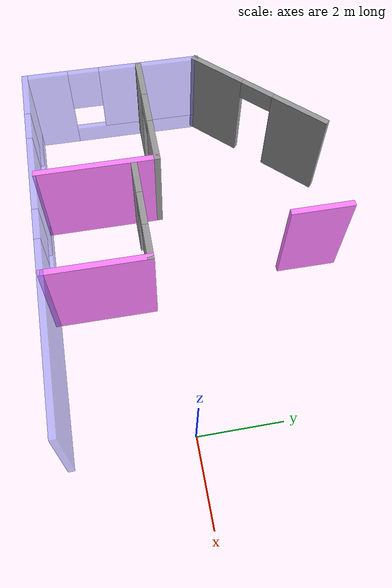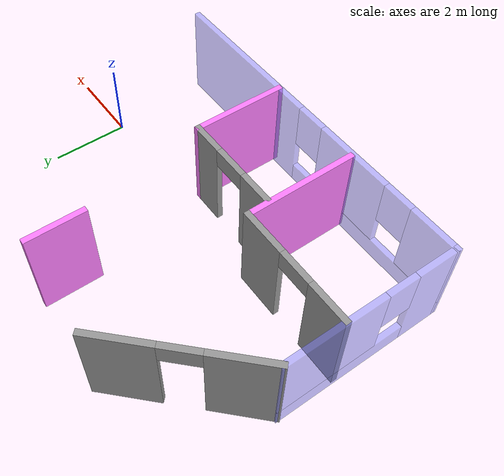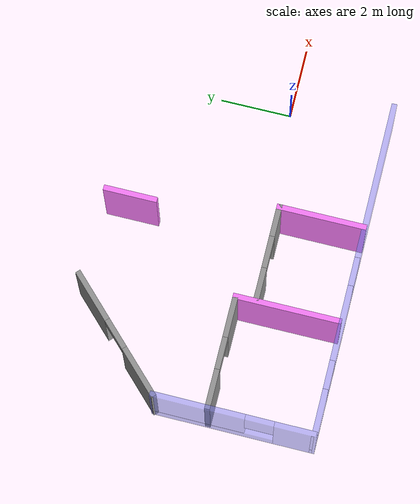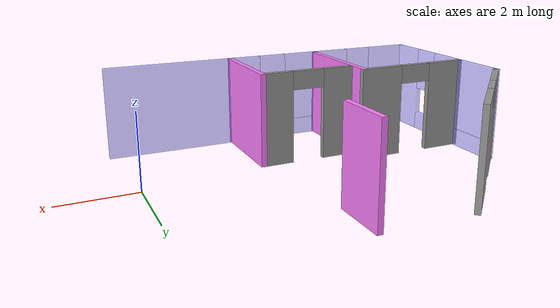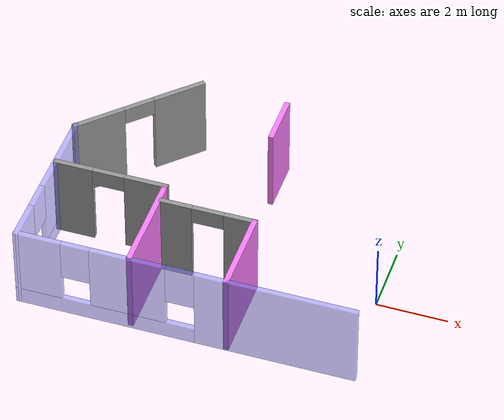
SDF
<sdf version="1.6">
 <model name="house">
  <link name="Wall_12">
   <pose>-4.46967 -2.80585 0 0 -0 3.14159</pose>
   <inertial>
    <mass>1</mass>
    <inertia><ixx>1</ixx><ixy>0</ixy><ixz>0</ixz><iyy>1</iyy><iyz>0</iyz><izz>1</izz></inertia>
   </inertial>
   <visual name="Wall_12_Visual_0">
    <pose>-2.52226 0 1.25 0 -0 0</pose>
    <geometry><box><size>4.45547 0.15 2.5</size></box></geometry>
    <material>
     <script><uri>file://media/materials/scripts/gazebo.material</uri><name>Gazebo/Grey</name></script>
     <ambient>0.5 0.5 1 0.5</ambient>
     <shader type="pixel"><normal_map>__default__</normal_map></shader>
     <diffuse>0.7 0.7 0.7 1</diffuse>
     <specular>0.01 0.01 0.01 1</specular>
     <emissive>0 0 0 1</emissive>
    </material>
    <meta><layer>0</layer></meta>
   </visual>
   <visual name="Wall_12_Visual_1">
    <pose>2.22774 0 0.25 0 -0 0</pose>
    <geometry><box><size>5.04453 0.15 0.5</size></box></geometry>
    <material>
     <script><uri>file://media/materials/scripts/gazebo.material</uri><name>Gazebo/Grey</name></script>
     <ambient>0.5 0.5 1 0.5</ambient>
     <shader type="pixel"><normal_map>__default__</normal_map></shader>
     <diffuse>0.7 0.7 0.7 1</diffuse>
     <specular>0.01 0.01 0.01 1</specular>
     <emissive>0 0 0 1</emissive>
    </material>
    <meta><layer>0</layer></meta>
   </visual>
   <visual name="Wall_12_Visual_5">
    <pose>3.01993 0 1.9 0 -0 0</pose>
    <geometry><box><size>0.8 0.15 1.2</size></box></geometry>
    <material>
     <script><uri>file://media/materials/scripts/gazebo.material</uri><name>Gazebo/Grey</name></script>
     <ambient>0.5 0.5 1 0.5</ambient>
     <shader type="pixel"><normal_map>__default__</normal_map></shader>
     <diffuse>0.7 0.7 0.7 1</diffuse>
     <specular>0.01 0.01 0.01 1</specular>
     <emissive>0 0 0 1</emissive>
    </material>
    <meta><layer>0</layer></meta>
   </visual>
   <visual name="Wall_12_Visual_2">
    <pose>1.5627 0 1.5 0 -0 0</pose>
    <geometry><box><size>2.11446 0.15 2</size></box></geometry>
    <material>
     <script><uri>file://media/materials/scripts/gazebo.material</uri><name>Gazebo/Grey</name></script>
     <ambient>0.5 0.5 1 0.5</ambient>
     <shader type="pixel"><normal_map>__default__</normal_map></shader>
     <diffuse>0.7 0.7 0.7 1</diffuse>
     <specular>0.01 0.01 0.01 1</specular>
     <emissive>0 0 0 1</emissive>
    </material>
    <meta><layer>0</layer></meta>
   </visual>
   <visual name="Wall_12_Visual_3">
    <pose>4.08496 0 1.5 0 -0 0</pose>
    <geometry><box><size>1.33007 0.15 2</size></box></geometry>
    <material>
     <script><uri>file://media/materials/scripts/gazebo.material</uri><name>Gazebo/Grey</name></script>
     <ambient>0.5 0.5 1 0.5</ambient>
     <shader type="pixel"><normal_map>__default__</normal_map></shader>
     <diffuse>0.7 0.7 0.7 1</diffuse>
     <specular>0.01 0.01 0.01 1</specular>
     <emissive>0 0 0 1</emissive>
    </material>
    <meta><layer>0</layer></meta>
   </visual>
   <visual name="Wall_12_Visual_4">
    <pose>0.10547 0 1.9 0 -0 0</pose>
    <geometry><box><size>0.8 0.15 1.2</size></box></geometry>
    <material>
     <script><uri>file://media/materials/scripts/gazebo.material</uri><name>Gazebo/Grey</name></script>
     <ambient>0.5 0.5 1 0.5</ambient>
     <shader type="pixel"><normal_map>__default__</normal_map></shader>
     <diffuse>0.7 0.7 0.7 1</diffuse>
     <specular>0.01 0.01 0.01 1</specular>
     <emissive>0 0 0 1</emissive>
    </material>
    <meta><layer>0</layer></meta>
   </visual>
   <collision name="Wall_12_Collision_0">
    <pose>-2.52226 0 1.25 0 -0 0</pose>
    <geometry><box><size>4.45547 0.15 2.5</size></box></geometry>
    <surface>
     <friction>
      <ode><mu>1</mu><mu2>1</mu2><fdir1>0 0 0</fdir1><slip1>0</slip1><slip2>0</slip2></ode>
      <torsional>
       <coefficient>1</coefficient>
       <patch_radius>0</patch_radius>
       <surface_radius>0</surface_radius>
       <use_patch_radius>1</use_patch_radius>
       <ode><slip>0</slip></ode>
      </torsional>
     </friction>
     <bounce><restitution_coefficient>0</restitution_coefficient><threshold>1e+06</threshold></bounce>
     <contact>
      <collide_without_contact>0</collide_without_contact>
      <collide_without_contact_bitmask>1</collide_without_contact_bitmask>
      <collide_bitmask>1</collide_bitmask>
      <ode>
       <soft_cfm>0</soft_cfm>
       <soft_erp>0.2</soft_erp>
       <kp>1e+13</kp>
       <kd>1</kd>
       <max_vel>0.01</max_vel>
       <min_depth>0</min_depth>
      </ode>
      <bullet>
       <split_impulse>1</split_impulse>
       <split_impulse_penetration_threshold>-0.01</split_impulse_penetration_threshold>
       <soft_cfm>0</soft_cfm>
       <soft_erp>0.2</soft_erp>
       <kp>1e+13</kp>
       <kd>1</kd>
      </bullet>
     </contact>
    </surface>
   </collision>
   <collision name="Wall_12_Collision_1">
    <pose>2.22774 0 0.25 0 -0 0</pose>
    <geometry><box><size>5.04453 0.15 0.5</size></box></geometry>
    <surface>
     <friction>
      <ode><mu>1</mu><mu2>1</mu2><fdir1>0 0 0</fdir1><slip1>0</slip1><slip2>0</slip2></ode>
      <torsional>
       <coefficient>1</coefficient>
       <patch_radius>0</patch_radius>
       <surface_radius>0</surface_radius>
       <use_patch_radius>1</use_patch_radius>
       <ode><slip>0</slip></ode>
      </torsional>
     </friction>
     <bounce><restitution_coefficient>0</restitution_coefficient><threshold>1e+06</threshold></bounce>
     <contact>
      <collide_without_contact>0</collide_without_contact>
      <collide_without_contact_bitmask>1</collide_without_contact_bitmask>
      <collide_bitmask>1</collide_bitmask>
      <ode>
       <soft_cfm>0</soft_cfm>
       <soft_erp>0.2</soft_erp>
       <kp>1e+13</kp>
       <kd>1</kd>
       <max_vel>0.01</max_vel>
       <min_depth>0</min_depth>
      </ode>
      <bullet>
       <split_impulse>1</split_impulse>
       <split_impulse_penetration_threshold>-0.01</split_impulse_penetration_threshold>
       <soft_cfm>0</soft_cfm>
       <soft_erp>0.2</soft_erp>
       <kp>1e+13</kp>
       <kd>1</kd>
      </bullet>
     </contact>
    </surface>
   </collision>
   <collision name="Wall_12_Collision_5">
    <pose>3.01993 0 1.9 0 -0 0</pose>
    <geometry><box><size>0.8 0.15 1.2</size></box></geometry>
    <surface>
     <friction>
      <ode><mu>1</mu><mu2>1</mu2><fdir1>0 0 0</fdir1><slip1>0</slip1><slip2>0</slip2></ode>
      <torsional>
       <coefficient>1</coefficient>
       <patch_radius>0</patch_radius>
       <surface_radius>0</surface_radius>
       <use_patch_radius>1</use_patch_radius>
       <ode><slip>0</slip></ode>
      </torsional>
     </friction>
     <bounce><restitution_coefficient>0</restitution_coefficient><threshold>1e+06</threshold></bounce>
     <contact>
      <collide_without_contact>0</collide_without_contact>
      <collide_without_contact_bitmask>1</collide_without_contact_bitmask>
      <collide_bitmask>1</collide_bitmask>
      <ode>
       <soft_cfm>0</soft_cfm>
       <soft_erp>0.2</soft_erp>
       <kp>1e+13</kp>
       <kd>1</kd>
       <max_vel>0.01</max_vel>
       <min_depth>0</min_depth>
      </ode>
      <bullet>
       <split_impulse>1</split_impulse>
       <split_impulse_penetration_threshold>-0.01</split_impulse_penetration_threshold>
       <soft_cfm>0</soft_cfm>
       <soft_erp>0.2</soft_erp>
       <kp>1e+13</kp>
       <kd>1</kd>
      </bullet>
     </contact>
    </surface>
   </collision>
   <collision name="Wall_12_Collision_2">
    <pose>1.5627 0 1.5 0 -0 0</pose>
    <geometry><box><size>2.11446 0.15 2</size></box></geometry>
    <surface>
     <friction>
      <ode><mu>1</mu><mu2>1</mu2><fdir1>0 0 0</fdir1><slip1>0</slip1><slip2>0</slip2></ode>
      <torsional>
       <coefficient>1</coefficient>
       <patch_radius>0</patch_radius>
       <surface_radius>0</surface_radius>
       <use_patch_radius>1</use_patch_radius>
       <ode><slip>0</slip></ode>
      </torsional>
     </friction>
     <bounce><restitution_coefficient>0</restitution_coefficient><threshold>1e+06</threshold></bounce>
     <contact>
      <collide_without_contact>0</collide_without_contact>
      <collide_without_contact_bitmask>1</collide_without_contact_bitmask>
      <collide_bitmask>1</collide_bitmask>
      <ode>
       <soft_cfm>0</soft_cfm>
       <soft_erp>0.2</soft_erp>
       <kp>1e+13</kp>
       <kd>1</kd>
       <max_vel>0.01</max_vel>
       <min_depth>0</min_depth>
      </ode>
      <bullet>
       <split_impulse>1</split_impulse>
       <split_impulse_penetration_threshold>-0.01</split_impulse_penetration_threshold>
       <soft_cfm>0</soft_cfm>
       <soft_erp>0.2</soft_erp>
       <kp>1e+13</kp>
       <kd>1</kd>
      </bullet>
     </contact>
    </surface>
   </collision>
   <collision name="Wall_12_Collision_3">
    <pose>4.08496 0 1.5 0 -0 0</pose>
    <geometry><box><size>1.33007 0.15 2</size></box></geometry>
    <surface>
     <friction>
      <ode><mu>1</mu><mu2>1</mu2><fdir1>0 0 0</fdir1><slip1>0</slip1><slip2>0</slip2></ode>
      <torsional>
       <coefficient>1</coefficient>
       <patch_radius>0</patch_radius>
       <surface_radius>0</surface_radius>
       <use_patch_radius>1</use_patch_radius>
       <ode><slip>0</slip></ode>
      </torsional>
     </friction>
     <bounce><restitution_coefficient>0</restitution_coefficient><threshold>1e+06</threshold></bounce>
     <contact>
      <collide_without_contact>0</collide_without_contact>
      <collide_without_contact_bitmask>1</collide_without_contact_bitmask>
      <collide_bitmask>1</collide_bitmask>
      <ode>
       <soft_cfm>0</soft_cfm>
       <soft_erp>0.2</soft_erp>
       <kp>1e+13</kp>
       <kd>1</kd>
       <max_vel>0.01</max_vel>
       <min_depth>0</min_depth>
      </ode>
      <bullet>
       <split_impulse>1</split_impulse>
       <split_impulse_penetration_threshold>-0.01</split_impulse_penetration_threshold>
       <soft_cfm>0</soft_cfm>
       <soft_erp>0.2</soft_erp>
       <kp>1e+13</kp>
       <kd>1</kd>
      </bullet>
     </contact>
    </surface>
   </collision>
   <collision name="Wall_12_Collision_4">
    <pose>0.10547 0 1.9 0 -0 0</pose>
    <geometry><box><size>0.8 0.15 1.2</size></box></geometry>
    <surface>
     <friction>
      <ode><mu>1</mu><mu2>1</mu2><fdir1>0 0 0</fdir1><slip1>0</slip1><slip2>0</slip2></ode>
      <torsional>
       <coefficient>1</coefficient>
       <patch_radius>0</patch_radius>
       <surface_radius>0</surface_radius>
       <use_patch_radius>1</use_patch_radius>
       <ode><slip>0</slip></ode>
      </torsional>
     </friction>
     <bounce><restitution_coefficient>0</restitution_coefficient><threshold>1e+06</threshold></bounce>
     <contact>
      <collide_without_contact>0</collide_without_contact>
      <collide_without_contact_bitmask>1</collide_without_contact_bitmask>
      <collide_bitmask>1</collide_bitmask>
      <ode>
       <soft_cfm>0</soft_cfm>
       <soft_erp>0.2</soft_erp>
       <kp>1e+13</kp>
       <kd>1</kd>
       <max_vel>0.01</max_vel>
       <min_depth>0</min_depth>
      </ode>
      <bullet>
       <split_impulse>1</split_impulse>
       <split_impulse_penetration_threshold>-0.01</split_impulse_penetration_threshold>
       <soft_cfm>0</soft_cfm>
       <soft_erp>0.2</soft_erp>
       <kp>1e+13</kp>
       <kd>1</kd>
      </bullet>
     </contact>
    </surface>
   </collision>
  </link>
  <link name="Wall_13">
   <pose>-9.13266 -0.586181 0 0 -0 1.56539</pose>
   <inertial>
    <mass>1</mass>
    <inertia><ixx>1</ixx><ixy>0</ixy><ixz>0</ixz><iyy>1</iyy><iyz>0</iyz><izz>1</izz></inertia>
   </inertial>
   <visual name="Wall_13_Visual_0">
    <pose>-1.70872 0 1.25 0 -0 0</pose>
    <geometry><box><size>1.17197 0.15 2.5</size></box></geometry>
    <material>
     <script><uri>file://media/materials/scripts/gazebo.material</uri><name>Gazebo/Grey</name></script>
     <ambient>0.5 0.5 1 0.5</ambient>
     <shader type="pixel"><normal_map>__default__</normal_map></shader>
     <diffuse>0.7 0.7 0.7 1</diffuse>
     <specular>0.01 0.01 0.01 1</specular>
     <emissive>0 0 0 1</emissive>
    </material>
    <meta><layer>0</layer></meta>
   </visual>
   <visual name="Wall_13_Visual_1">
    <pose>0.585986 0 0.25 0 -0 0</pose>
    <geometry><box><size>3.41743 0.15 0.5</size></box></geometry>
    <material>
     <script><uri>file://media/materials/scripts/gazebo.material</uri><name>Gazebo/Grey</name></script>
     <ambient>0.5 0.5 1 0.5</ambient>
     <shader type="pixel"><normal_map>__default__</normal_map></shader>
     <diffuse>0.7 0.7 0.7 1</diffuse>
     <specular>0.01 0.01 0.01 1</specular>
     <emissive>0 0 0 1</emissive>
    </material>
    <meta><layer>0</layer></meta>
   </visual>
   <visual name="Wall_13_Visual_2">
    <pose>0.985986 0 1.5 0 -0 0</pose>
    <geometry><box><size>2.61743 0.15 2</size></box></geometry>
    <material>
     <script><uri>file://media/materials/scripts/gazebo.material</uri><name>Gazebo/Grey</name></script>
     <ambient>0.5 0.5 1 0.5</ambient>
     <shader type="pixel"><normal_map>__default__</normal_map></shader>
     <diffuse>0.7 0.7 0.7 1</diffuse>
     <specular>0.01 0.01 0.01 1</specular>
     <emissive>0 0 0 1</emissive>
    </material>
    <meta><layer>0</layer></meta>
   </visual>
   <visual name="Wall_13_Visual_3">
    <pose>-0.722731 0 1.9 0 -0 0</pose>
    <geometry><box><size>0.8 0.15 1.2</size></box></geometry>
    <material>
     <script><uri>file://media/materials/scripts/gazebo.material</uri><name>Gazebo/Grey</name></script>
     <ambient>0.5 0.5 1 0.5</ambient>
     <shader type="pixel"><normal_map>__default__</normal_map></shader>
     <diffuse>0.7 0.7 0.7 1</diffuse>
     <specular>0.01 0.01 0.01 1</specular>
     <emissive>0 0 0 1</emissive>
    </material>
    <meta><layer>0</layer></meta>
   </visual>
   <collision name="Wall_13_Collision_0">
    <pose>-1.70872 0 1.25 0 -0 0</pose>
    <geometry><box><size>1.17197 0.15 2.5</size></box></geometry>
    <surface>
     <friction>
      <ode><mu>1</mu><mu2>1</mu2><fdir1>0 0 0</fdir1><slip1>0</slip1><slip2>0</slip2></ode>
      <torsional>
       <coefficient>1</coefficient>
       <patch_radius>0</patch_radius>
       <surface_radius>0</surface_radius>
       <use_patch_radius>1</use_patch_radius>
       <ode><slip>0</slip></ode>
      </torsional>
     </friction>
     <bounce><restitution_coefficient>0</restitution_coefficient><threshold>1e+06</threshold></bounce>
     <contact>
      <collide_without_contact>0</collide_without_contact>
      <collide_without_contact_bitmask>1</collide_without_contact_bitmask>
      <collide_bitmask>1</collide_bitmask>
      <ode>
       <soft_cfm>0</soft_cfm>
       <soft_erp>0.2</soft_erp>
       <kp>1e+13</kp>
       <kd>1</kd>
       <max_vel>0.01</max_vel>
       <min_depth>0</min_depth>
      </ode>
      <bullet>
       <split_impulse>1</split_impulse>
       <split_impulse_penetration_threshold>-0.01</split_impulse_penetration_threshold>
       <soft_cfm>0</soft_cfm>
       <soft_erp>0.2</soft_erp>
       <kp>1e+13</kp>
       <kd>1</kd>
      </bullet>
     </contact>
    </surface>
   </collision>
   <collision name="Wall_13_Collision_1">
    <pose>0.585986 0 0.25 0 -0 0</pose>
    <geometry><box><size>3.41743 0.15 0.5</size></box></geometry>
    <surface>
     <friction>
      <ode><mu>1</mu><mu2>1</mu2><fdir1>0 0 0</fdir1><slip1>0</slip1><slip2>0</slip2></ode>
      <torsional>
       <coefficient>1</coefficient>
       <patch_radius>0</patch_radius>
       <surface_radius>0</surface_radius>
       <use_patch_radius>1</use_patch_radius>
       <ode><slip>0</slip></ode>
      </torsional>
     </friction>
     <bounce><restitution_coefficient>0</restitution_coefficient><threshold>1e+06</threshold></bounce>
     <contact>
      <collide_without_contact>0</collide_without_contact>
      <collide_without_contact_bitmask>1</collide_without_contact_bitmask>
      <collide_bitmask>1</collide_bitmask>
      <ode>
       <soft_cfm>0</soft_cfm>
       <soft_erp>0.2</soft_erp>
       <kp>1e+13</kp>
       <kd>1</kd>
       <max_vel>0.01</max_vel>
       <min_depth>0</min_depth>
      </ode>
      <bullet>
       <split_impulse>1</split_impulse>
       <split_impulse_penetration_threshold>-0.01</split_impulse_penetration_threshold>
       <soft_cfm>0</soft_cfm>
       <soft_erp>0.2</soft_erp>
       <kp>1e+13</kp>
       <kd>1</kd>
      </bullet>
     </contact>
    </surface>
   </collision>
   <collision name="Wall_13_Collision_3">
    <pose>-0.722731 0 1.9 0 -0 0</pose>
    <geometry><box><size>0.8 0.15 1.2</size></box></geometry>
    <surface>
     <friction>
      <ode><mu>1</mu><mu2>1</mu2><fdir1>0 0 0</fdir1><slip1>0</slip1><slip2>0</slip2></ode>
      <torsional>
       <coefficient>1</coefficient>
       <patch_radius>0</patch_radius>
       <surface_radius>0</surface_radius>
       <use_patch_radius>1</use_patch_radius>
       <ode><slip>0</slip></ode>
      </torsional>
     </friction>
     <bounce><restitution_coefficient>0</restitution_coefficient><threshold>1e+06</threshold></bounce>
     <contact>
      <collide_without_contact>0</collide_without_contact>
      <collide_without_contact_bitmask>1</collide_without_contact_bitmask>
      <collide_bitmask>1</collide_bitmask>
      <ode>
       <soft_cfm>0</soft_cfm>
       <soft_erp>0.2</soft_erp>
       <kp>1e+13</kp>
       <kd>1</kd>
       <max_vel>0.01</max_vel>
       <min_depth>0</min_depth>
      </ode>
      <bullet>
       <split_impulse>1</split_impulse>
       <split_impulse_penetration_threshold>-0.01</split_impulse_penetration_threshold>
       <soft_cfm>0</soft_cfm>
       <soft_erp>0.2</soft_erp>
       <kp>1e+13</kp>
       <kd>1</kd>
      </bullet>
     </contact>
    </surface>
   </collision>
   <collision name="Wall_13_Collision_2">
    <pose>0.985986 0 1.5 0 -0 0</pose>
    <geometry><box><size>2.61743 0.15 2</size></box></geometry>
    <surface>
     <friction>
      <ode><mu>1</mu><mu2>1</mu2><fdir1>0 0 0</fdir1><slip1>0</slip1><slip2>0</slip2></ode>
      <torsional>
       <coefficient>1</coefficient>
       <patch_radius>0</patch_radius>
       <surface_radius>0</surface_radius>
       <use_patch_radius>1</use_patch_radius>
       <ode><slip>0</slip></ode>
      </torsional>
     </friction>
     <bounce><restitution_coefficient>0</restitution_coefficient><threshold>1e+06</threshold></bounce>
     <contact>
      <collide_without_contact>0</collide_without_contact>
      <collide_without_contact_bitmask>1</collide_without_contact_bitmask>
      <collide_bitmask>1</collide_bitmask>
      <ode>
       <soft_cfm>0</soft_cfm>
       <soft_erp>0.2</soft_erp>
       <kp>1e+13</kp>
       <kd>1</kd>
       <max_vel>0.01</max_vel>
       <min_depth>0</min_depth>
      </ode>
      <bullet>
       <split_impulse>1</split_impulse>
       <split_impulse_penetration_threshold>-0.01</split_impulse_penetration_threshold>
       <soft_cfm>0</soft_cfm>
       <soft_erp>0.2</soft_erp>
       <kp>1e+13</kp>
       <kd>1</kd>
      </bullet>
     </contact>
    </surface>
   </collision>
  </link>
  <link name="Wall_15">
   <pose>-7.54673 0.125343 0 0 -0 0</pose>
   <inertial>
    <mass>1</mass>
    <inertia><ixx>1</ixx><ixy>0</ixy><ixz>0</ixz><iyy>1</iyy><iyz>0</iyz><izz>1</izz></inertia>
   </inertial>
   <visual name="Wall_15_Visual_0">
    <pose>-1.06675 0 1.25 0 -0 0</pose>
    <geometry><box><size>1.11649 0.15 2.5</size></box></geometry>
    <material>
     <script><uri>file://media/materials/scripts/gazebo.material</uri><name>Gazebo/Grey</name></script>
     <ambient>0.5 0.5 0.5 0.5</ambient>
     <shader type="pixel"><normal_map>__default__</normal_map></shader>
     <diffuse>0.7 0.7 0.7 1</diffuse>
     <specular>0.01 0.01 0.01 1</specular>
     <emissive>0 0 0 1</emissive>
    </material>
    <meta><layer>0</layer></meta>
   </visual>
   <visual name="Wall_15_Visual_1">
    <pose>1.00825 0 1.25 0 -0 0</pose>
    <geometry><box><size>1.23351 0.15 2.5</size></box></geometry>
    <material>
     <script><uri>file://media/materials/scripts/gazebo.material</uri><name>Gazebo/Grey</name></script>
     <ambient>0.5 0.5 0.5 0.5</ambient>
     <shader type="pixel"><normal_map>__default__</normal_map></shader>
     <diffuse>0.7 0.7 0.7 1</diffuse>
     <specular>0.01 0.01 0.01 1</specular>
     <emissive>0 0 0 1</emissive>
    </material>
    <meta><layer>0</layer></meta>
   </visual>
   <visual name="Wall_15_Visual_2">
    <pose>-0.058511 0 2.25 0 -0 0</pose>
    <geometry><box><size>0.9 0.15 0.5</size></box></geometry>
    <material>
     <script><uri>file://media/materials/scripts/gazebo.material</uri><name>Gazebo/Grey</name></script>
     <ambient>0.5 0.5 0.5 0.5</ambient>
     <shader type="pixel"><normal_map>__default__</normal_map></shader>
     <diffuse>0.7 0.7 0.7 1</diffuse>
     <specular>0.01 0.01 0.01 1</specular>
     <emissive>0 0 0 1</emissive>
    </material>
    <meta><layer>0</layer></meta>
   </visual>
   <collision name="Wall_15_Collision_0">
    <pose>-1.06675 0 1.25 0 -0 0</pose>
    <geometry><box><size>1.11649 0.15 2.5</size></box></geometry>
    <surface>
     <friction>
      <ode><mu>1</mu><mu2>1</mu2><fdir1>0 0 0</fdir1><slip1>0</slip1><slip2>0</slip2></ode>
      <torsional>
       <coefficient>1</coefficient>
       <patch_radius>0</patch_radius>
       <surface_radius>0</surface_radius>
       <use_patch_radius>1</use_patch_radius>
       <ode><slip>0</slip></ode>
      </torsional>
     </friction>
     <bounce><restitution_coefficient>0</restitution_coefficient><threshold>1e+06</threshold></bounce>
     <contact>
      <collide_without_contact>0</collide_without_contact>
      <collide_without_contact_bitmask>1</collide_without_contact_bitmask>
      <collide_bitmask>1</collide_bitmask>
      <ode>
       <soft_cfm>0</soft_cfm>
       <soft_erp>0.2</soft_erp>
       <kp>1e+13</kp>
       <kd>1</kd>
       <max_vel>0.01</max_vel>
       <min_depth>0</min_depth>
      </ode>
      <bullet>
       <split_impulse>1</split_impulse>
       <split_impulse_penetration_threshold>-0.01</split_impulse_penetration_threshold>
       <soft_cfm>0</soft_cfm>
       <soft_erp>0.2</soft_erp>
       <kp>1e+13</kp>
       <kd>1</kd>
      </bullet>
     </contact>
    </surface>
   </collision>
   <collision name="Wall_15_Collision_1">
    <pose>1.00825 0 1.25 0 -0 0</pose>
    <geometry><box><size>1.23351 0.15 2.5</size></box></geometry>
    <surface>
     <friction>
      <ode><mu>1</mu><mu2>1</mu2><fdir1>0 0 0</fdir1><slip1>0</slip1><slip2>0</slip2></ode>
      <torsional>
       <coefficient>1</coefficient>
       <patch_radius>0</patch_radius>
       <surface_radius>0</surface_radius>
       <use_patch_radius>1</use_patch_radius>
       <ode><slip>0</slip></ode>
      </torsional>
     </friction>
     <bounce><restitution_coefficient>0</restitution_coefficient><threshold>1e+06</threshold></bounce>
     <contact>
      <collide_without_contact>0</collide_without_contact>
      <collide_without_contact_bitmask>1</collide_without_contact_bitmask>
      <collide_bitmask>1</collide_bitmask>
      <ode>
       <soft_cfm>0</soft_cfm>
       <soft_erp>0.2</soft_erp>
       <kp>1e+13</kp>
       <kd>1</kd>
       <max_vel>0.01</max_vel>
       <min_depth>0</min_depth>
      </ode>
      <bullet>
       <split_impulse>1</split_impulse>
       <split_impulse_penetration_threshold>-0.01</split_impulse_penetration_threshold>
       <soft_cfm>0</soft_cfm>
       <soft_erp>0.2</soft_erp>
       <kp>1e+13</kp>
       <kd>1</kd>
      </bullet>
     </contact>
    </surface>
   </collision>
   <collision name="Wall_15_Collision_2">
    <pose>-0.058511 0 2.25 0 -0 0</pose>
    <geometry><box><size>0.9 0.15 0.5</size></box></geometry>
    <surface>
     <friction>
      <ode><mu>1</mu><mu2>1</mu2><fdir1>0 0 0</fdir1><slip1>0</slip1><slip2>0</slip2></ode>
      <torsional>
       <coefficient>1</coefficient>
       <patch_radius>0</patch_radius>
       <surface_radius>0</surface_radius>
       <use_patch_radius>1</use_patch_radius>
       <ode><slip>0</slip></ode>
      </torsional>
     </friction>
     <bounce><restitution_coefficient>0</restitution_coefficient><threshold>1e+06</threshold></bounce>
     <contact>
      <collide_without_contact>0</collide_without_contact>
      <collide_without_contact_bitmask>1</collide_without_contact_bitmask>
      <collide_bitmask>1</collide_bitmask>
      <ode>
       <soft_cfm>0</soft_cfm>
       <soft_erp>0.2</soft_erp>
       <kp>1e+13</kp>
       <kd>1</kd>
       <max_vel>0.01</max_vel>
       <min_depth>0</min_depth>
      </ode>
      <bullet>
       <split_impulse>1</split_impulse>
       <split_impulse_penetration_threshold>-0.01</split_impulse_penetration_threshold>
       <soft_cfm>0</soft_cfm>
       <soft_erp>0.2</soft_erp>
       <kp>1e+13</kp>
       <kd>1</kd>
      </bullet>
     </contact>
    </surface>
   </collision>
  </link>
  <link name="Wall_16">
   <pose>-5.99674 -1.29966 0 0 0 -1.5708</pose>
   <inertial>
    <mass>1</mass>
    <inertia><ixx>1</ixx><ixy>0</ixy><ixz>0</ixz><iyy>1</iyy><iyz>0</iyz><izz>1</izz></inertia>
   </inertial>
   <visual name="Wall_16_Visual">
    <pose>0 0 1.25 0 -0 0</pose>
    <geometry><box><size>3 0.15 2.5</size></box></geometry>
    <material>
     <script><uri>file://media/materials/scripts/gazebo.material</uri><name>Gazebo/Grey</name></script>
     <ambient>1 0.5 1 1</ambient>
     <shader type="pixel"><normal_map>__default__</normal_map></shader>
     <diffuse>0.7 0.7 0.7 1</diffuse>
     <specular>0.01 0.01 0.01 1</specular>
     <emissive>0 0 0 1</emissive>
    </material>
    <meta><layer>0</layer></meta>
   </visual>
   <collision name="Wall_16_Collision">
    <pose>0 0 1.25 0 -0 0</pose>
    <geometry><box><size>3 0.15 2.5</size></box></geometry>
    <surface>
     <friction>
      <ode><mu>1</mu><mu2>1</mu2><fdir1>0 0 0</fdir1><slip1>0</slip1><slip2>0</slip2></ode>
      <torsional>
       <coefficient>1</coefficient>
       <patch_radius>0</patch_radius>
       <surface_radius>0</surface_radius>
       <use_patch_radius>1</use_patch_radius>
       <ode><slip>0</slip></ode>
      </torsional>
     </friction>
     <bounce><restitution_coefficient>0</restitution_coefficient><threshold>1e+06</threshold></bounce>
     <contact>
      <collide_without_contact>0</collide_without_contact>
      <collide_without_contact_bitmask>1</collide_without_contact_bitmask>
      <collide_bitmask>1</collide_bitmask>
      <ode>
       <soft_cfm>0</soft_cfm>
       <soft_erp>0.2</soft_erp>
       <kp>1e+13</kp>
       <kd>1</kd>
       <max_vel>0.01</max_vel>
       <min_depth>0</min_depth>
      </ode>
      <bullet>
       <split_impulse>1</split_impulse>
       <split_impulse_penetration_threshold>-0.01</split_impulse_penetration_threshold>
       <soft_cfm>0</soft_cfm>
       <soft_erp>0.2</soft_erp>
       <kp>1e+13</kp>
       <kd>1</kd>
      </bullet>
     </contact>
    </surface>
   </collision>
  </link>
  <link name="Wall_18">
   <pose>-4.60471 -0.433261 0 0 -0 0</pose>
   <inertial>
    <mass>1</mass>
    <inertia><ixx>1</ixx><ixy>0</ixy><ixz>0</ixz><iyy>1</iyy><iyz>0</iyz><izz>1</izz></inertia>
   </inertial>
   <visual name="Wall_18_Visual_0">
    <pose>-0.909278 0 1.25 0 -0 0</pose>
    <geometry><box><size>0.931444 0.15 2.5</size></box></geometry>
    <material>
     <script><uri>file://media/materials/scripts/gazebo.material</uri><name>Gazebo/Grey</name></script>
     <ambient>0.5 0.5 0.5 0.5</ambient>
     <shader type="pixel"><normal_map>__default__</normal_map></shader>
     <diffuse>0.7 0.7 0.7 1</diffuse>
     <specular>0.01 0.01 0.01 1</specular>
     <emissive>0 0 0 1</emissive>
    </material>
    <meta><layer>0</layer></meta>
   </visual>
   <visual name="Wall_18_Visual_1">
    <pose>0.915722 0 1.25 0 -0 0</pose>
    <geometry><box><size>0.918556 0.15 2.5</size></box></geometry>
    <material>
     <script><uri>file://media/materials/scripts/gazebo.material</uri><name>Gazebo/Grey</name></script>
     <ambient>0.5 0.5 0.5 0.5</ambient>
     <shader type="pixel"><normal_map>__default__</normal_map></shader>
     <diffuse>0.7 0.7 0.7 1</diffuse>
     <specular>0.01 0.01 0.01 1</specular>
     <emissive>0 0 0 1</emissive>
    </material>
    <meta><layer>0</layer></meta>
   </visual>
   <visual name="Wall_18_Visual_2">
    <pose>0.006444 0 2.25 0 -0 0</pose>
    <geometry><box><size>0.9 0.15 0.5</size></box></geometry>
    <material>
     <script><uri>file://media/materials/scripts/gazebo.material</uri><name>Gazebo/Grey</name></script>
     <ambient>0.5 0.5 0.5 0.5</ambient>
     <shader type="pixel"><normal_map>__default__</normal_map></shader>
     <diffuse>0.7 0.7 0.7 1</diffuse>
     <specular>0.01 0.01 0.01 1</specular>
     <emissive>0 0 0 1</emissive>
    </material>
    <meta><layer>0</layer></meta>
   </visual>
   <collision name="Wall_18_Collision_0">
    <pose>-0.909278 0 1.25 0 -0 0</pose>
    <geometry><box><size>0.931444 0.15 2.5</size></box></geometry>
    <surface>
     <friction>
      <ode><mu>1</mu><mu2>1</mu2><fdir1>0 0 0</fdir1><slip1>0</slip1><slip2>0</slip2></ode>
      <torsional>
       <coefficient>1</coefficient>
       <patch_radius>0</patch_radius>
       <surface_radius>0</surface_radius>
       <use_patch_radius>1</use_patch_radius>
       <ode><slip>0</slip></ode>
      </torsional>
     </friction>
     <bounce><restitution_coefficient>0</restitution_coefficient><threshold>1e+06</threshold></bounce>
     <contact>
      <collide_without_contact>0</collide_without_contact>
      <collide_without_contact_bitmask>1</collide_without_contact_bitmask>
      <collide_bitmask>1</collide_bitmask>
      <ode>
       <soft_cfm>0</soft_cfm>
       <soft_erp>0.2</soft_erp>
       <kp>1e+13</kp>
       <kd>1</kd>
       <max_vel>0.01</max_vel>
       <min_depth>0</min_depth>
      </ode>
      <bullet>
       <split_impulse>1</split_impulse>
       <split_impulse_penetration_threshold>-0.01</split_impulse_penetration_threshold>
       <soft_cfm>0</soft_cfm>
       <soft_erp>0.2</soft_erp>
       <kp>1e+13</kp>
       <kd>1</kd>
      </bullet>
     </contact>
    </surface>
   </collision>
   <collision name="Wall_18_Collision_1">
    <pose>0.915722 0 1.25 0 -0 0</pose>
    <geometry><box><size>0.918556 0.15 2.5</size></box></geometry>
    <surface>
     <friction>
      <ode><mu>1</mu><mu2>1</mu2><fdir1>0 0 0</fdir1><slip1>0</slip1><slip2>0</slip2></ode>
      <torsional>
       <coefficient>1</coefficient>
       <patch_radius>0</patch_radius>
       <surface_radius>0</surface_radius>
       <use_patch_radius>1</use_patch_radius>
       <ode><slip>0</slip></ode>
      </torsional>
     </friction>
     <bounce><restitution_coefficient>0</restitution_coefficient><threshold>1e+06</threshold></bounce>
     <contact>
      <collide_without_contact>0</collide_without_contact>
      <collide_without_contact_bitmask>1</collide_without_contact_bitmask>
      <collide_bitmask>1</collide_bitmask>
      <ode>
       <soft_cfm>0</soft_cfm>
       <soft_erp>0.2</soft_erp>
       <kp>1e+13</kp>
       <kd>1</kd>
       <max_vel>0.01</max_vel>
       <min_depth>0</min_depth>
      </ode>
      <bullet>
       <split_impulse>1</split_impulse>
       <split_impulse_penetration_threshold>-0.01</split_impulse_penetration_threshold>
       <soft_cfm>0</soft_cfm>
       <soft_erp>0.2</soft_erp>
       <kp>1e+13</kp>
       <kd>1</kd>
      </bullet>
     </contact>
    </surface>
   </collision>
   <collision name="Wall_18_Collision_2">
    <pose>0.006444 0 2.25 0 -0 0</pose>
    <geometry><box><size>0.9 0.15 0.5</size></box></geometry>
    <surface>
     <friction>
      <ode><mu>1</mu><mu2>1</mu2><fdir1>0 0 0</fdir1><slip1>0</slip1><slip2>0</slip2></ode>
      <torsional>
       <coefficient>1</coefficient>
       <patch_radius>0</patch_radius>
       <surface_radius>0</surface_radius>
       <use_patch_radius>1</use_patch_radius>
       <ode><slip>0</slip></ode>
      </torsional>
     </friction>
     <bounce><restitution_coefficient>0</restitution_coefficient><threshold>1e+06</threshold></bounce>
     <contact>
      <collide_without_contact>0</collide_without_contact>
      <collide_without_contact_bitmask>1</collide_without_contact_bitmask>
      <collide_bitmask>1</collide_bitmask>
      <ode>
       <soft_cfm>0</soft_cfm>
       <soft_erp>0.2</soft_erp>
       <kp>1e+13</kp>
       <kd>1</kd>
       <max_vel>0.01</max_vel>
       <min_depth>0</min_depth>
      </ode>
      <bullet>
       <split_impulse>1</split_impulse>
       <split_impulse_penetration_threshold>-0.01</split_impulse_penetration_threshold>
       <soft_cfm>0</soft_cfm>
       <soft_erp>0.2</soft_erp>
       <kp>1e+13</kp>
       <kd>1</kd>
      </bullet>
     </contact>
    </surface>
   </collision>
  </link>
  <link name="Wall_19">
   <pose>-3.30471 -1.60826 0 0 0 -1.5708</pose>
   <inertial>
    <mass>1</mass>
    <inertia><ixx>1</ixx><ixy>0</ixy><ixz>0</ixz><iyy>1</iyy><iyz>0</iyz><izz>1</izz></inertia>
   </inertial>
   <visual name="Wall_19_Visual">
    <pose>0 0 1.25 0 -0 0</pose>
    <geometry><box><size>2.5 0.15 2.5</size></box></geometry>
    <material>
     <script><uri>file://media/materials/scripts/gazebo.material</uri><name>Gazebo/Grey</name></script>
     <ambient>1 0.5 1 1</ambient>
     <shader type="pixel"><normal_map>__default__</normal_map></shader>
     <diffuse>0.7 0.7 0.7 1</diffuse>
     <specular>0.01 0.01 0.01 1</specular>
     <emissive>0 0 0 1</emissive>
    </material>
    <meta><layer>0</layer></meta>
   </visual>
   <collision name="Wall_19_Collision">
    <pose>0 0 1.25 0 -0 0</pose>
    <geometry><box><size>2.5 0.15 2.5</size></box></geometry>
    <surface>
     <friction>
      <ode><mu>1</mu><mu2>1</mu2><fdir1>0 0 0</fdir1><slip1>0</slip1><slip2>0</slip2></ode>
      <torsional>
       <coefficient>1</coefficient>
       <patch_radius>0</patch_radius>
       <surface_radius>0</surface_radius>
       <use_patch_radius>1</use_patch_radius>
       <ode><slip>0</slip></ode>
      </torsional>
     </friction>
     <bounce><restitution_coefficient>0</restitution_coefficient><threshold>1e+06</threshold></bounce>
     <contact>
      <collide_without_contact>0</collide_without_contact>
      <collide_without_contact_bitmask>1</collide_without_contact_bitmask>
      <collide_bitmask>1</collide_bitmask>
      <ode>
       <soft_cfm>0</soft_cfm>
       <soft_erp>0.2</soft_erp>
       <kp>1e+13</kp>
       <kd>1</kd>
       <max_vel>0.01</max_vel>
       <min_depth>0</min_depth>
      </ode>
      <bullet>
       <split_impulse>1</split_impulse>
       <split_impulse_penetration_threshold>-0.01</split_impulse_penetration_threshold>
       <soft_cfm>0</soft_cfm>
       <soft_erp>0.2</soft_erp>
       <kp>1e+13</kp>
       <kd>1</kd>
      </bullet>
     </contact>
    </surface>
   </collision>
  </link>
  <link name="Wall_2">
   <pose>-7.75947 2.99467 0 0 -0 0.785398</pose>
   <inertial>
    <mass>1</mass>
    <inertia><ixx>1</ixx><ixy>0</ixy><ixz>0</ixz><iyy>1</iyy><iyz>0</iyz><izz>1</izz></inertia>
   </inertial>
   <visual name="Wall_2_Visual_0">
    <pose>-1.22818 0 1.25 0 -0 0</pose>
    <geometry><box><size>1.54364 0.15 2.5</size></box></geometry>
    <material>
     <script><uri>file://media/materials/scripts/gazebo.material</uri><name>Gazebo/Grey</name></script>
     <ambient>0.5 0.5 0.5 0.5</ambient>
     <shader type="pixel"><normal_map>__default__</normal_map></shader>
     <diffuse>0.7 0.7 0.7 1</diffuse>
     <specular>0.01 0.01 0.01 1</specular>
     <emissive>0 0 0 1</emissive>
    </material>
    <meta><layer>0</layer></meta>
   </visual>
   <visual name="Wall_2_Visual_1">
    <pose>1.22182 0 1.25 0 -0 0</pose>
    <geometry><box><size>1.55636 0.15 2.5</size></box></geometry>
    <material>
     <script><uri>file://media/materials/scripts/gazebo.material</uri><name>Gazebo/Grey</name></script>
     <ambient>0.5 0.5 0.5 0.5</ambient>
     <shader type="pixel"><normal_map>__default__</normal_map></shader>
     <diffuse>0.7 0.7 0.7 1</diffuse>
     <specular>0.01 0.01 0.01 1</specular>
     <emissive>0 0 0 1</emissive>
    </material>
    <meta><layer>0</layer></meta>
   </visual>
   <visual name="Wall_2_Visual_2">
    <pose>-0.006361 0 2.25 0 -0 0</pose>
    <geometry><box><size>0.9 0.15 0.5</size></box></geometry>
    <material>
     <script><uri>file://media/materials/scripts/gazebo.material</uri><name>Gazebo/Grey</name></script>
     <ambient>0.5 0.5 0.5 0.5</ambient>
     <shader type="pixel"><normal_map>__default__</normal_map></shader>
     <diffuse>0.7 0.7 0.7 1</diffuse>
     <specular>0.01 0.01 0.01 1</specular>
     <emissive>0 0 0 1</emissive>
    </material>
    <meta><layer>0</layer></meta>
   </visual>
   <collision name="Wall_2_Collision_0">
    <pose>-1.22818 0 1.25 0 -0 0</pose>
    <geometry><box><size>1.54364 0.15 2.5</size></box></geometry>
    <surface>
     <friction>
      <ode><mu>1</mu><mu2>1</mu2><fdir1>0 0 0</fdir1><slip1>0</slip1><slip2>0</slip2></ode>
      <torsional>
       <coefficient>1</coefficient>
       <patch_radius>0</patch_radius>
       <surface_radius>0</surface_radius>
       <use_patch_radius>1</use_patch_radius>
       <ode><slip>0</slip></ode>
      </torsional>
     </friction>
     <bounce><restitution_coefficient>0</restitution_coefficient><threshold>1e+06</threshold></bounce>
     <contact>
      <collide_without_contact>0</collide_without_contact>
      <collide_without_contact_bitmask>1</collide_without_contact_bitmask>
      <collide_bitmask>1</collide_bitmask>
      <ode>
       <soft_cfm>0</soft_cfm>
       <soft_erp>0.2</soft_erp>
       <kp>1e+13</kp>
       <kd>1</kd>
       <max_vel>0.01</max_vel>
       <min_depth>0</min_depth>
      </ode>
      <bullet>
       <split_impulse>1</split_impulse>
       <split_impulse_penetration_threshold>-0.01</split_impulse_penetration_threshold>
       <soft_cfm>0</soft_cfm>
       <soft_erp>0.2</soft_erp>
       <kp>1e+13</kp>
       <kd>1</kd>
      </bullet>
     </contact>
    </surface>
   </collision>
   <collision name="Wall_2_Collision_1">
    <pose>1.22182 0 1.25 0 -0 0</pose>
    <geometry><box><size>1.55636 0.15 2.5</size></box></geometry>
    <surface>
     <friction>
      <ode><mu>1</mu><mu2>1</mu2><fdir1>0 0 0</fdir1><slip1>0</slip1><slip2>0</slip2></ode>
      <torsional>
       <coefficient>1</coefficient>
       <patch_radius>0</patch_radius>
       <surface_radius>0</surface_radius>
       <use_patch_radius>1</use_patch_radius>
       <ode><slip>0</slip></ode>
      </torsional>
     </friction>
     <bounce><restitution_coefficient>0</restitution_coefficient><threshold>1e+06</threshold></bounce>
     <contact>
      <collide_without_contact>0</collide_without_contact>
      <collide_without_contact_bitmask>1</collide_without_contact_bitmask>
      <collide_bitmask>1</collide_bitmask>
      <ode>
       <soft_cfm>0</soft_cfm>
       <soft_erp>0.2</soft_erp>
       <kp>1e+13</kp>
       <kd>1</kd>
       <max_vel>0.01</max_vel>
       <min_depth>0</min_depth>
      </ode>
      <bullet>
       <split_impulse>1</split_impulse>
       <split_impulse_penetration_threshold>-0.01</split_impulse_penetration_threshold>
       <soft_cfm>0</soft_cfm>
       <soft_erp>0.2</soft_erp>
       <kp>1e+13</kp>
       <kd>1</kd>
      </bullet>
     </contact>
    </surface>
   </collision>
   <collision name="Wall_2_Collision_2">
    <pose>-0.006361 0 2.25 0 -0 0</pose>
    <geometry><box><size>0.9 0.15 0.5</size></box></geometry>
    <surface>
     <friction>
      <ode><mu>1</mu><mu2>1</mu2><fdir1>0 0 0</fdir1><slip1>0</slip1><slip2>0</slip2></ode>
      <torsional>
       <coefficient>1</coefficient>
       <patch_radius>0</patch_radius>
       <surface_radius>0</surface_radius>
       <use_patch_radius>1</use_patch_radius>
       <ode><slip>0</slip></ode>
      </torsional>
     </friction>
     <bounce><restitution_coefficient>0</restitution_coefficient><threshold>1e+06</threshold></bounce>
     <contact>
      <collide_without_contact>0</collide_without_contact>
      <collide_without_contact_bitmask>1</collide_without_contact_bitmask>
      <collide_bitmask>1</collide_bitmask>
      <ode>
       <soft_cfm>0</soft_cfm>
       <soft_erp>0.2</soft_erp>
       <kp>1e+13</kp>
       <kd>1</kd>
       <max_vel>0.01</max_vel>
       <min_depth>0</min_depth>
      </ode>
      <bullet>
       <split_impulse>1</split_impulse>
       <split_impulse_penetration_threshold>-0.01</split_impulse_penetration_threshold>
       <soft_cfm>0</soft_cfm>
       <soft_erp>0.2</soft_erp>
       <kp>1e+13</kp>
       <kd>1</kd>
      </bullet>
     </contact>
    </surface>
   </collision>
  </link>
  <link name="Wall_35">
   <pose>-3.90834 3.57584 0 0 -0 1.5708</pose>
   <inertial>
    <mass>1</mass>
    <inertia><ixx>1</ixx><ixy>0</ixy><ixz>0</ixz><iyy>1</iyy><iyz>0</iyz><izz>1</izz></inertia>
   </inertial>
   <visual name="Wall_35_Visual">
    <pose>0 0 1.25 0 -0 0</pose>
    <geometry><box><size>1.5 0.15 2.5</size></box></geometry>
    <material>
     <script><uri>file://media/materials/scripts/gazebo.material</uri><name>Gazebo/Grey</name></script>
     <ambient>1 0.5 1 1</ambient>
     <shader type="pixel"><normal_map>__default__</normal_map></shader>
     <diffuse>0.7 0.7 0.7 1</diffuse>
     <specular>0.01 0.01 0.01 1</specular>
     <emissive>0 0 0 1</emissive>
    </material>
    <meta><layer>0</layer></meta>
   </visual>
   <collision name="Wall_35_Collision">
    <pose>0 0 1.25 0 -0 0</pose>
    <geometry><box><size>1.5 0.15 2.5</size></box></geometry>
    <surface>
     <friction>
      <ode><mu>1</mu><mu2>1</mu2><fdir1>0 0 0</fdir1><slip1>0</slip1><slip2>0</slip2></ode>
      <torsional>
       <coefficient>1</coefficient>
       <patch_radius>0</patch_radius>
       <surface_radius>0</surface_radius>
       <use_patch_radius>1</use_patch_radius>
       <ode><slip>0</slip></ode>
      </torsional>
     </friction>
     <bounce><restitution_coefficient>0</restitution_coefficient><threshold>1e+06</threshold></bounce>
     <contact>
      <collide_without_contact>0</collide_without_contact>
      <collide_without_contact_bitmask>1</collide_without_contact_bitmask>
      <collide_bitmask>1</collide_bitmask>
      <ode>
       <soft_cfm>0</soft_cfm>
       <soft_erp>0.2</soft_erp>
       <kp>1e+13</kp>
       <kd>1</kd>
       <max_vel>0.01</max_vel>
       <min_depth>0</min_depth>
      </ode>
      <bullet>
       <split_impulse>1</split_impulse>
       <split_impulse_penetration_threshold>-0.01</split_impulse_penetration_threshold>
       <soft_cfm>0</soft_cfm>
       <soft_erp>0.2</soft_erp>
       <kp>1e+13</kp>
       <kd>1</kd>
      </bullet>
     </contact>
    </surface>
   </collision>
  </link>
  <static>1</static>
 </model>
</sdf>
